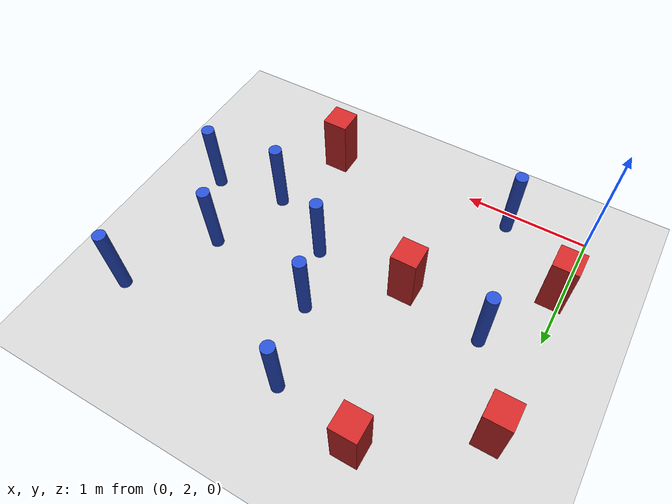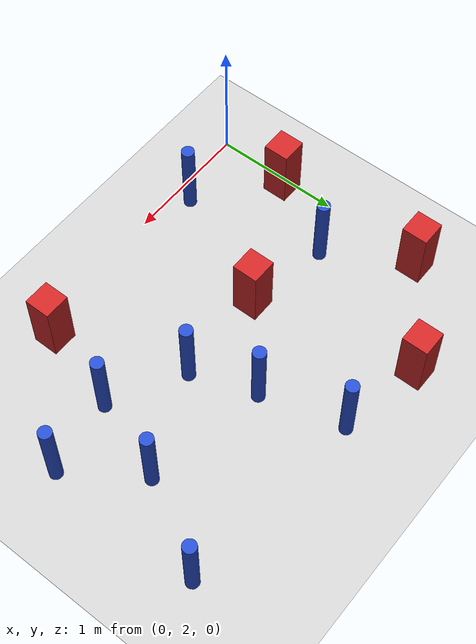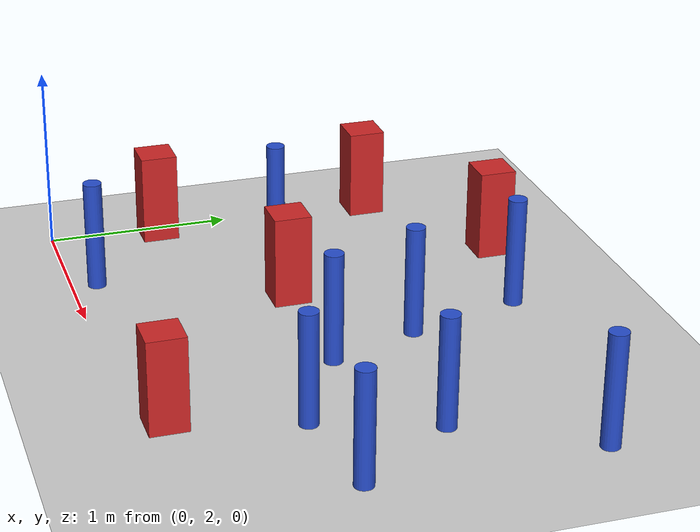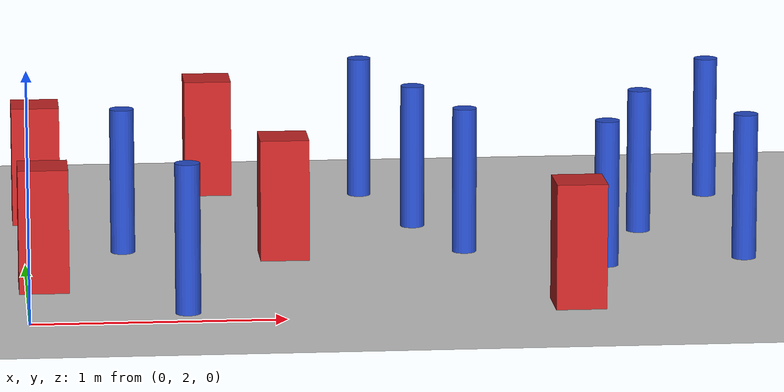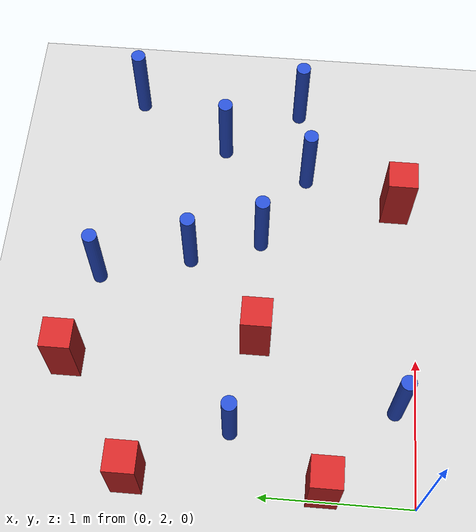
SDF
<sdf version="1.6">
 <world name="default">
  <model name="ground_plane">
   <static>1</static>
   <link name="link">
    <collision name="collision">
     <geometry><plane><normal>0 0 1</normal><size>100 100</size></plane></geometry>
     <surface><friction><ode><mu>100</mu><mu2>50</mu2></ode></friction></surface>
    </collision>
    <visual name="visual">
     <cast_shadows>0</cast_shadows>
     <geometry><plane><normal>0 0 1</normal><size>100 100</size></plane></geometry>
     <material>
      <ambient>1.0 1.0 1.0 1.0</ambient>
      <diffuse>0.8 0.8 0.8 1.0</diffuse>
      <specular>0.01 0.01 0.01 1.000000</specular>
     </material>
    </visual>
   </link>
  </model>
  <model name="pole_obstacle3">
   <static>true</static>
   <pose>1.4623566968 4.20926063526 -3.09024884793e-07 -7.19054271912e-07 -2.11315075134e-07 -1.93935509265e-07</pose>
   <link name="link">
    <pose>0 0 0.3 0 -0 0</pose>
    <inertial>
     <mass>1</mass>
     <inertia><ixx>0.145833</ixx><ixy>0</ixy><ixz>0</ixz><iyy>0.145833</iyy><iyz>0</iyz><izz>0.125</izz></inertia>
    </inertial>
    <collision name="collision">
     <geometry><cylinder><radius>0.05</radius><length>.6</length></cylinder></geometry>
    </collision>
    <visual name="visual">
     <geometry><cylinder><radius>0.05</radius><length>.6</length></cylinder></geometry>
     <material>
      <script><name>Gazebo/Blue</name><uri>file://media/materials/scripts/gazebo.material</uri></script>
     </material>
    </visual>
   </link>
  </model>
  <model name="pole_obstacle35">
   <static>true</static>
   <pose>0.620560896258 2.13645355765 -3.09024884793e-07 -7.19054271912e-07 -2.11315075129e-07 -1.93935509263e-07</pose>
   <link name="link">
    <pose>0 0 0.3 0 -0 0</pose>
    <inertial>
     <mass>1</mass>
     <inertia><ixx>0.145833</ixx><ixy>0</ixy><ixz>0</ixz><iyy>0.145833</iyy><iyz>0</iyz><izz>0.125</izz></inertia>
    </inertial>
    <collision name="collision">
     <geometry><cylinder><radius>0.05</radius><length>.6</length></cylinder></geometry>
    </collision>
    <visual name="visual">
     <geometry><cylinder><radius>0.05</radius><length>.6</length></cylinder></geometry>
     <material>
      <script><name>Gazebo/Blue</name><uri>file://media/materials/scripts/gazebo.material</uri></script>
     </material>
    </visual>
   </link>
  </model>
  <model name="pole_obstacle56">
   <static>true</static>
   <pose>2.3536835347 2.80569661578 -3.09024884793e-07 -7.19054271912e-07 -2.11315075144e-07 -1.93935509271e-07</pose>
   <link name="link">
    <pose>0 0 0.3 0 -0 0</pose>
    <inertial>
     <mass>1</mass>
     <inertia><ixx>0.145833</ixx><ixy>0</ixy><ixz>0</ixz><iyy>0.145833</iyy><iyz>0</iyz><izz>0.125</izz></inertia>
    </inertial>
    <collision name="collision">
     <geometry><cylinder><radius>0.05</radius><length>.6</length></cylinder></geometry>
    </collision>
    <visual name="visual">
     <geometry><cylinder><radius>0.05</radius><length>.6</length></cylinder></geometry>
     <material>
      <script><name>Gazebo/Blue</name><uri>file://media/materials/scripts/gazebo.material</uri></script>
     </material>
    </visual>
   </link>
  </model>
  <model name="square_post_obstacle65">
   <static>true</static>
   <pose>0.0606723394 3.82437056992 -4.36207812815e-07 3.75137919937e-06 9.77721102514e-07 2.47381364184e-05</pose>
   <link name="link">
    <pose>0 0 0.25 0 -0 0</pose>
    <inertial>
     <mass>100</mass>
     <inertia>
      <ixx>0.166667</ixx>
      <ixy>0</ixy>
      <ixz>0</ixz>
      <iyy>0.166667</iyy>
      <iyz>0</iyz>
      <izz>0.166667</izz>
     </inertia>
    </inertial>
    <collision name="collision"><geometry><box><size>.2 .2 .5</size></box></geometry></collision>
    <visual name="visual">
     <geometry><box><size>.2 .2 .5</size></box></geometry>
     <material>
      <script><name>Gazebo/Red</name><uri>file://media/materials/scripts/gazebo.material</uri></script>
     </material>
    </visual>
   </link>
  </model>
  <model name="pole_obstacle105">
   <static>true</static>
   <pose>0.404624400005 3.20533084339 -3.09024884793e-07 -7.19054271912e-07 -2.11315075129e-07 -1.93935509263e-07</pose>
   <link name="link">
    <pose>0 0 0.3 0 -0 0</pose>
    <inertial>
     <mass>1</mass>
     <inertia><ixx>0.145833</ixx><ixy>0</ixy><ixz>0</ixz><iyy>0.145833</iyy><iyz>0</iyz><izz>0.125</izz></inertia>
    </inertial>
    <collision name="collision">
     <geometry><cylinder><radius>0.05</radius><length>.6</length></cylinder></geometry>
    </collision>
    <visual name="visual">
     <geometry><cylinder><radius>0.05</radius><length>.6</length></cylinder></geometry>
     <material>
      <script><name>Gazebo/Blue</name><uri>file://media/materials/scripts/gazebo.material</uri></script>
     </material>
    </visual>
   </link>
  </model>
  <model name="square_post_obstacle100">
   <static>true</static>
   <pose>1.05827582543 3.08532761732 -4.36207812815e-07 3.75137919937e-06 9.77721102514e-07 2.47381364184e-05</pose>
   <link name="link">
    <pose>0 0 0.25 0 -0 0</pose>
    <inertial>
     <mass>100</mass>
     <inertia>
      <ixx>0.166667</ixx>
      <ixy>0</ixy>
      <ixz>0</ixz>
      <iyy>0.166667</iyy>
      <iyz>0</iyz>
      <izz>0.166667</izz>
     </inertia>
    </inertial>
    <collision name="collision"><geometry><box><size>.2 .2 .5</size></box></geometry></collision>
    <visual name="visual">
     <geometry><box><size>.2 .2 .5</size></box></geometry>
     <material>
      <script><name>Gazebo/Red</name><uri>file://media/materials/scripts/gazebo.material</uri></script>
     </material>
    </visual>
   </link>
  </model>
  <model name="square_post_obstacle108">
   <static>true</static>
   <pose>0.811067516007 4.33124412876 -4.36207812815e-07 3.75137919937e-06 9.77721102514e-07 2.47381364184e-05</pose>
   <link name="link">
    <pose>0 0 0.25 0 -0 0</pose>
    <inertial>
     <mass>100</mass>
     <inertia>
      <ixx>0.166667</ixx>
      <ixy>0</ixy>
      <ixz>0</ixz>
      <iyy>0.166667</iyy>
      <iyz>0</iyz>
      <izz>0.166667</izz>
     </inertia>
    </inertial>
    <collision name="collision"><geometry><box><size>.2 .2 .5</size></box></geometry></collision>
    <visual name="visual">
     <geometry><box><size>.2 .2 .5</size></box></geometry>
     <material>
      <script><name>Gazebo/Red</name><uri>file://media/materials/scripts/gazebo.material</uri></script>
     </material>
    </visual>
   </link>
  </model>
  <model name="square_post_obstacle137">
   <static>true</static>
   <pose>2.15858224603 2.15805475401 -4.36207812815e-07 3.75137919937e-06 9.77721102514e-07 2.47381364184e-05</pose>
   <link name="link">
    <pose>0 0 0.25 0 -0 0</pose>
    <inertial>
     <mass>100</mass>
     <inertia>
      <ixx>0.166667</ixx>
      <ixy>0</ixy>
      <ixz>0</ixz>
      <iyy>0.166667</iyy>
      <iyz>0</iyz>
      <izz>0.166667</izz>
     </inertia>
    </inertial>
    <collision name="collision"><geometry><box><size>.2 .2 .5</size></box></geometry></collision>
    <visual name="visual">
     <geometry><box><size>.2 .2 .5</size></box></geometry>
     <material>
      <script><name>Gazebo/Red</name><uri>file://media/materials/scripts/gazebo.material</uri></script>
     </material>
    </visual>
   </link>
  </model>
  <model name="pole_obstacle184">
   <static>true</static>
   <pose>2.93185327053 2.8873278645 -3.09024884793e-07 -7.19054271912e-07 -2.11315075144e-07 -1.93935509271e-07</pose>
   <link name="link">
    <pose>0 0 0.3 0 -0 0</pose>
    <inertial>
     <mass>1</mass>
     <inertia><ixx>0.145833</ixx><ixy>0</ixy><ixz>0</ixz><iyy>0.145833</iyy><iyz>0</iyz><izz>0.125</izz></inertia>
    </inertial>
    <collision name="collision">
     <geometry><cylinder><radius>0.05</radius><length>.6</length></cylinder></geometry>
    </collision>
    <visual name="visual">
     <geometry><cylinder><radius>0.05</radius><length>.6</length></cylinder></geometry>
     <material>
      <script><name>Gazebo/Blue</name><uri>file://media/materials/scripts/gazebo.material</uri></script>
     </material>
    </visual>
   </link>
  </model>
  <model name="pole_obstacle185">
   <static>true</static>
   <pose>1.63498483423 3.58603410617 -3.09024884793e-07 -7.19054271912e-07 -2.11315075132e-07 -1.93935509263e-07</pose>
   <link name="link">
    <pose>0 0 0.3 0 -0 0</pose>
    <inertial>
     <mass>1</mass>
     <inertia><ixx>0.145833</ixx><ixy>0</ixy><ixz>0</ixz><iyy>0.145833</iyy><iyz>0</iyz><izz>0.125</izz></inertia>
    </inertial>
    <collision name="collision">
     <geometry><cylinder><radius>0.05</radius><length>.6</length></cylinder></geometry>
    </collision>
    <visual name="visual">
     <geometry><cylinder><radius>0.05</radius><length>.6</length></cylinder></geometry>
     <material>
      <script><name>Gazebo/Blue</name><uri>file://media/materials/scripts/gazebo.material</uri></script>
     </material>
    </visual>
   </link>
  </model>
  <model name="square_post_obstacle182">
   <static>true</static>
   <pose>0.0674520133952 2.59814359292 -4.36207812815e-07 3.75137919937e-06 9.77721102514e-07 2.47381364184e-05</pose>
   <link name="link">
    <pose>0 0 0.25 0 -0 0</pose>
    <inertial>
     <mass>100</mass>
     <inertia>
      <ixx>0.166667</ixx>
      <ixy>0</ixy>
      <ixz>0</ixz>
      <iyy>0.166667</iyy>
      <iyz>0</iyz>
      <izz>0.166667</izz>
     </inertia>
    </inertial>
    <collision name="collision"><geometry><box><size>.2 .2 .5</size></box></geometry></collision>
    <visual name="visual">
     <geometry><box><size>.2 .2 .5</size></box></geometry>
     <material>
      <script><name>Gazebo/Red</name><uri>file://media/materials/scripts/gazebo.material</uri></script>
     </material>
    </visual>
   </link>
  </model>
  <model name="pole_obstacle203">
   <static>true</static>
   <pose>2.94800223498 4.08014494569 -3.09024884793e-07 -7.19054271912e-07 -2.11315075134e-07 -1.93935509266e-07</pose>
   <link name="link">
    <pose>0 0 0.3 0 -0 0</pose>
    <inertial>
     <mass>1</mass>
     <inertia><ixx>0.145833</ixx><ixy>0</ixy><ixz>0</ixz><iyy>0.145833</iyy><iyz>0</iyz><izz>0.125</izz></inertia>
    </inertial>
    <collision name="collision">
     <geometry><cylinder><radius>0.05</radius><length>.6</length></cylinder></geometry>
    </collision>
    <visual name="visual">
     <geometry><cylinder><radius>0.05</radius><length>.6</length></cylinder></geometry>
     <material>
      <script><name>Gazebo/Blue</name><uri>file://media/materials/scripts/gazebo.material</uri></script>
     </material>
    </visual>
   </link>
  </model>
  <model name="pole_obstacle221">
   <static>true</static>
   <pose>2.56925112814 3.41752485587 -3.09024884793e-07 -7.19054271912e-07 -2.11315075144e-07 -1.93935509271e-07</pose>
   <link name="link">
    <pose>0 0 0.3 0 -0 0</pose>
    <inertial>
     <mass>1</mass>
     <inertia><ixx>0.145833</ixx><ixy>0</ixy><ixz>0</ixz><iyy>0.145833</iyy><iyz>0</iyz><izz>0.125</izz></inertia>
    </inertial>
    <collision name="collision">
     <geometry><cylinder><radius>0.05</radius><length>.6</length></cylinder></geometry>
    </collision>
    <visual name="visual">
     <geometry><cylinder><radius>0.05</radius><length>.6</length></cylinder></geometry>
     <material>
      <script><name>Gazebo/Blue</name><uri>file://media/materials/scripts/gazebo.material</uri></script>
     </material>
    </visual>
   </link>
  </model>
  <model name="pole_obstacle224">
   <static>true</static>
   <pose>1.80397091343 3.10176327428 -3.09024884793e-07 -7.19054271912e-07 -2.11315075132e-07 -1.93935509263e-07</pose>
   <link name="link">
    <pose>0 0 0.3 0 -0 0</pose>
    <inertial>
     <mass>1</mass>
     <inertia><ixx>0.145833</ixx><ixy>0</ixy><ixz>0</ixz><iyy>0.145833</iyy><iyz>0</iyz><izz>0.125</izz></inertia>
    </inertial>
    <collision name="collision">
     <geometry><cylinder><radius>0.05</radius><length>.6</length></cylinder></geometry>
    </collision>
    <visual name="visual">
     <geometry><cylinder><radius>0.05</radius><length>.6</length></cylinder></geometry>
     <material>
      <script><name>Gazebo/Blue</name><uri>file://media/materials/scripts/gazebo.material</uri></script>
     </material>
    </visual>
   </link>
  </model>
 </world>
</sdf>
